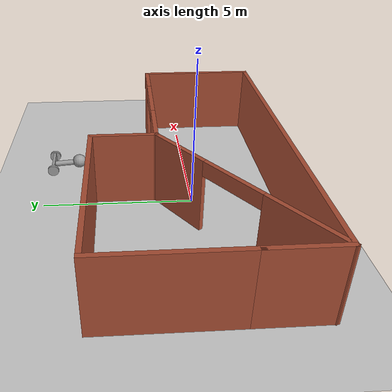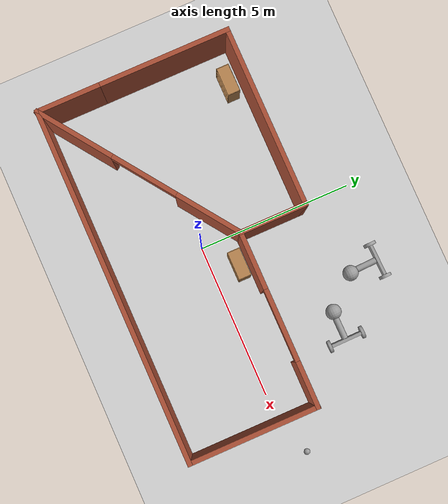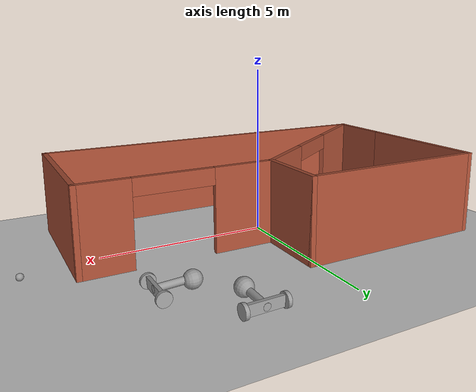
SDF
<sdf version="1.6">
 <world name="default">
  <plugin name="hello" filename="libhello.so"/>
  <light name="sun" type="directional">
   <pose>0 0 10 0 -0 0</pose>
   <diffuse>0.8 0.8 0.8 1</diffuse>
   <specular>0.2 0.2 0.2 1</specular>
   <attenuation>
    <range>1000</range>
    <constant>0.9</constant>
    <linear>0.01</linear>
    <quadratic>0.001</quadratic>
   </attenuation>
   <direction>-0.5 0.1 -0.9</direction>
  </light>
  <model name="ground_plane">
   <static>1</static>
   <link name="link">
    <collision name="collision">
     <geometry><plane><normal>0 0 1</normal><size>100 100</size></plane></geometry>
     <surface>
      <contact><collide_bitmask>65535</collide_bitmask></contact>
      <friction><ode><mu>100</mu><mu2>50</mu2></ode></friction>
     </surface>
    </collision>
    <visual name="visual">
     <cast_shadows>0</cast_shadows>
     <geometry><plane><normal>0 0 1</normal><size>100 100</size></plane></geometry>
     <material>
      <script><uri>file://media/materials/scripts/gazebo.material</uri><name>Gazebo/Grey</name></script>
     </material>
    </visual>
   </link>
  </model>
  <gravity>0 0 -9.8</gravity>
  <magnetic_field>6e-06 2.3e-05 -4.2e-05</magnetic_field>
  <atmosphere type="adiabatic"/>
  <physics name="default_physics" default="0" type="ode">
   <max_step_size>0.001</max_step_size>
   <real_time_factor>1</real_time_factor>
   <real_time_update_rate>1000</real_time_update_rate>
  </physics>
  <scene><ambient>0.4 0.4 0.4 1</ambient><background>0.7 0.7 0.7 1</background><shadows>1</shadows></scene>
  <spherical_coordinates>
   <surface_model>EARTH_WGS84</surface_model>
   <latitude_deg>0</latitude_deg>
   <longitude_deg>0</longitude_deg>
   <elevation>0</elevation>
   <heading_deg>0</heading_deg>
  </spherical_coordinates>
  <model name="house">
   <pose>0.12324 0.17964 0 0 -0 0</pose>
   <link name="Wall_0">
    <collision name="Wall_0_Collision">
     <geometry><box><size>2.25 0.15 2.5</size></box></geometry>
     <pose>0 0 1.25 0 -0 0</pose>
    </collision>
    <visual name="Wall_0_Visual">
     <pose>0 0 1.25 0 -0 0</pose>
     <geometry><box><size>2.25 0.15 2.5</size></box></geometry>
     <material>
      <script><uri>file://media/materials/scripts/gazebo.material</uri><name>Gazebo/Bricks</name></script>
      <ambient>1 1 1 1</ambient>
     </material>
     <meta><layer>0</layer></meta>
    </visual>
    <pose>-5.6602 -2.0352 0 0 0 -1.5708</pose>
   </link>
   <link name="Wall_1">
    <collision name="Wall_1_Collision">
     <geometry><box><size>11.5 0.15 2.5</size></box></geometry>
     <pose>0 0 1.25 0 -0 0</pose>
    </collision>
    <visual name="Wall_1_Visual">
     <pose>0 0 1.25 0 -0 0</pose>
     <geometry><box><size>11.5 0.15 2.5</size></box></geometry>
     <material>
      <script><uri>file://media/materials/scripts/gazebo.material</uri><name>Gazebo/Bricks</name></script>
      <ambient>1 1 1 1</ambient>
     </material>
     <meta><layer>0</layer></meta>
    </visual>
    <pose>0.014804 -3.0852 0 0 -0 0</pose>
   </link>
   <link name="Wall_10">
    <collision name="Wall_10_Collision">
     <geometry><box><size>4.25 0.15 2.5</size></box></geometry>
     <pose>0 0 1.25 0 -0 0</pose>
    </collision>
    <visual name="Wall_10_Visual">
     <pose>0 0 1.25 0 -0 0</pose>
     <geometry><box><size>4.25 0.15 2.5</size></box></geometry>
     <material>
      <script><uri>file://media/materials/scripts/gazebo.material</uri><name>Gazebo/Bricks</name></script>
      <ambient>1 1 1 1</ambient>
     </material>
     <meta><layer>0</layer></meta>
    </visual>
    <pose>-5.6602 1.0648 0 0 -0 1.5708</pose>
   </link>
   <link name="Wall_12">
    <pose>-2.7852 -1.0352 0 0 -0 0.619426</pose>
    <visual name="Wall_12_Visual_0">
     <pose>-2.26033 0 1.25 0 -0 0</pose>
     <geometry><box><size>2.69139 0.15 2.5</size></box></geometry>
     <material>
      <script><uri>file://media/materials/scripts/gazebo.material</uri><name>Gazebo/Bricks</name></script>
      <ambient>1 1 1 1</ambient>
     </material>
     <meta><layer>0</layer></meta>
    </visual>
    <collision name="Wall_12_Collision_0">
     <geometry><box><size>2.69139 0.15 2.5</size></box></geometry>
     <pose>-2.26033 0 1.25 0 -0 0</pose>
    </collision>
    <visual name="Wall_12_Visual_1">
     <pose>2.46122 0 1.25 0 -0 0</pose>
     <geometry><box><size>2.28962 0.15 2.5</size></box></geometry>
     <material>
      <script><uri>file://media/materials/scripts/gazebo.material</uri><name>Gazebo/Bricks</name></script>
      <ambient>1 1 1 1</ambient>
     </material>
     <meta><layer>0</layer></meta>
    </visual>
    <collision name="Wall_12_Collision_1">
     <geometry><box><size>2.28962 0.15 2.5</size></box></geometry>
     <pose>2.46122 0 1.25 0 -0 0</pose>
    </collision>
    <visual name="Wall_12_Visual_2">
     <pose>0.200887 0 2.25 0 -0 0</pose>
     <geometry><box><size>2.23104 0.15 0.5</size></box></geometry>
     <material>
      <script><uri>file://media/materials/scripts/gazebo.material</uri><name>Gazebo/Bricks</name></script>
      <ambient>1 1 1 1</ambient>
     </material>
     <meta><layer>0</layer></meta>
    </visual>
    <collision name="Wall_12_Collision_2">
     <geometry><box><size>2.23104 0.15 0.5</size></box></geometry>
     <pose>0.200887 0 2.25 0 -0 0</pose>
    </collision>
   </link>
   <link name="Wall_2">
    <collision name="Wall_2_Collision">
     <geometry><box><size>4.25 0.15 2.5</size></box></geometry>
     <pose>0 0 1.25 0 -0 0</pose>
    </collision>
    <visual name="Wall_2_Visual">
     <pose>0 0 1.25 0 -0 0</pose>
     <geometry><box><size>4.25 0.15 2.5</size></box></geometry>
     <material>
      <script><uri>file://media/materials/scripts/gazebo.material</uri><name>Gazebo/Bricks</name></script>
      <ambient>1 1 1 1</ambient>
     </material>
     <meta><layer>0</layer></meta>
    </visual>
    <pose>5.6898 -1.0352 0 0 -0 1.5708</pose>
   </link>
   <link name="Wall_3">
    <pose>2.8898 1.0148 0 0 -0 3.14159</pose>
    <visual name="Wall_3_Visual_0">
     <pose>-2.11303 0 1.25 0 -0 0</pose>
     <geometry><box><size>1.52393 0.15 2.5</size></box></geometry>
     <material>
      <script><uri>file://media/materials/scripts/gazebo.material</uri><name>Gazebo/Bricks</name></script>
      <ambient>1 1 1 1</ambient>
     </material>
     <meta><layer>0</layer></meta>
    </visual>
    <collision name="Wall_3_Collision_0">
     <geometry><box><size>1.52393 0.15 2.5</size></box></geometry>
     <pose>-2.11303 0 1.25 0 -0 0</pose>
    </collision>
    <visual name="Wall_3_Visual_1">
     <pose>1.91994 0 1.25 0 -0 0</pose>
     <geometry><box><size>1.91012 0.15 2.5</size></box></geometry>
     <material>
      <script><uri>file://media/materials/scripts/gazebo.material</uri><name>Gazebo/Bricks</name></script>
      <ambient>1 1 1 1</ambient>
     </material>
     <meta><layer>0</layer></meta>
    </visual>
    <collision name="Wall_3_Collision_1">
     <geometry><box><size>1.91012 0.15 2.5</size></box></geometry>
     <pose>1.91994 0 1.25 0 -0 0</pose>
    </collision>
    <visual name="Wall_3_Visual_2">
     <pose>-0.193095 0 2.25 0 -0 0</pose>
     <geometry><box><size>2.31595 0.15 0.5</size></box></geometry>
     <material>
      <script><uri>file://media/materials/scripts/gazebo.material</uri><name>Gazebo/Bricks</name></script>
      <ambient>1 1 1 1</ambient>
     </material>
     <meta><layer>0</layer></meta>
    </visual>
    <collision name="Wall_3_Collision_2">
     <geometry><box><size>2.31595 0.15 0.5</size></box></geometry>
     <pose>-0.193095 0 2.25 0 -0 0</pose>
    </collision>
   </link>
   <link name="Wall_4">
    <collision name="Wall_4_Collision">
     <geometry><box><size>2.25 0.15 2.5</size></box></geometry>
     <pose>0 0 1.25 0 -0 0</pose>
    </collision>
    <visual name="Wall_4_Visual">
     <pose>0 0 1.25 0 -0 0</pose>
     <geometry><box><size>2.25 0.15 2.5</size></box></geometry>
     <material>
      <script><uri>file://media/materials/scripts/gazebo.material</uri><name>Gazebo/Bricks</name></script>
      <ambient>1 1 1 1</ambient>
     </material>
     <meta><layer>0</layer></meta>
    </visual>
    <pose>0.089804 2.0648 0 0 -0 1.5708</pose>
   </link>
   <link name="Wall_8">
    <collision name="Wall_8_Collision">
     <geometry><box><size>5.75 0.15 2.5</size></box></geometry>
     <pose>0 0 1.25 0 -0 0</pose>
    </collision>
    <visual name="Wall_8_Visual">
     <pose>0 0 1.25 0 -0 0</pose>
     <geometry><box><size>5.75 0.15 2.5</size></box></geometry>
     <material>
      <script><uri>file://media/materials/scripts/gazebo.material</uri><name>Gazebo/Bricks</name></script>
      <ambient>1 1 1 1</ambient>
     </material>
     <meta><layer>0</layer></meta>
    </visual>
    <pose>-2.7102 3.1148 0 0 -0 3.14159</pose>
   </link>
   <static>1</static>
  </model>
  <model name="bookshelf">
   <static>1</static>
   <link name="link">
    <inertial><mass>1</mass></inertial>
    <collision name="back">
     <pose>0 0.005 0.6 0 -0 0</pose>
     <geometry><box><size>0.9 0.01 1.2</size></box></geometry>
    </collision>
    <visual name="visual1">
     <pose>0 0.005 0.6 0 -0 0</pose>
     <geometry><box><size>0.9 0.01 1.2</size></box></geometry>
     <material>
      <script><uri>file://media/materials/scripts/gazebo.material</uri><name>Gazebo/Wood</name></script>
     </material>
    </visual>
    <collision name="left_side">
     <pose>0.45 -0.195 0.6 0 -0 0</pose>
     <geometry><box><size>0.02 0.4 1.2</size></box></geometry>
    </collision>
    <visual name="visual2">
     <pose>0.45 -0.195 0.6 0 -0 0</pose>
     <geometry><box><size>0.02 0.4 1.2</size></box></geometry>
     <material>
      <script><uri>file://media/materials/scripts/gazebo.material</uri><name>Gazebo/Wood</name></script>
     </material>
    </visual>
    <collision name="right_side">
     <pose>-0.45 -0.195 0.6 0 -0 0</pose>
     <geometry><box><size>0.02 0.4 1.2</size></box></geometry>
    </collision>
    <visual name="visual3">
     <pose>-0.45 -0.195 0.6 0 -0 0</pose>
     <geometry><box><size>0.02 0.4 1.2</size></box></geometry>
     <material>
      <script><uri>file://media/materials/scripts/gazebo.material</uri><name>Gazebo/Wood</name></script>
     </material>
    </visual>
    <collision name="bottom">
     <pose>0 -0.195 0.03 0 -0 0</pose>
     <geometry><box><size>0.88 0.4 0.06</size></box></geometry>
    </collision>
    <visual name="visual4">
     <pose>0 -0.195 0.03 0 -0 0</pose>
     <geometry><box><size>0.88 0.4 0.06</size></box></geometry>
     <material>
      <script><uri>file://media/materials/scripts/gazebo.material</uri><name>Gazebo/Wood</name></script>
     </material>
    </visual>
    <collision name="top">
     <pose>0 -0.195 1.19 0 -0 0</pose>
     <geometry><box><size>0.88 0.4 0.02</size></box></geometry>
    </collision>
    <visual name="visual5">
     <pose>0 -0.195 1.19 0 -0 0</pose>
     <geometry><box><size>0.88 0.4 0.02</size></box></geometry>
     <material>
      <script><uri>file://media/materials/scripts/gazebo.material</uri><name>Gazebo/Wood</name></script>
     </material>
    </visual>
    <collision name="low_shelf">
     <pose>0 -0.195 0.43 0 -0 0</pose>
     <geometry><box><size>0.88 0.4 0.02</size></box></geometry>
    </collision>
    <visual name="visual6">
     <pose>0 -0.195 0.43 0 -0 0</pose>
     <geometry><box><size>0.88 0.4 0.02</size></box></geometry>
     <material>
      <script><uri>file://media/materials/scripts/gazebo.material</uri><name>Gazebo/Wood</name></script>
     </material>
    </visual>
    <collision name="high_shelf">
     <pose>0 -0.195 0.8 0 -0 0</pose>
     <geometry><box><size>0.88 0.4 0.02</size></box></geometry>
    </collision>
    <visual name="visual7">
     <pose>0 -0.195 0.8 0 -0 0</pose>
     <geometry><box><size>0.88 0.4 0.02</size></box></geometry>
     <material>
      <script><uri>file://media/materials/scripts/gazebo.material</uri><name>Gazebo/Wood</name></script>
     </material>
    </visual>
   </link>
   <pose>-4.39055 3.02667 0 0 -0 0</pose>
  </model>
  <model name="bookshelf_0">
   <static>1</static>
   <link name="link">
    <inertial><mass>1</mass></inertial>
    <collision name="back">
     <pose>0 0.005 0.6 0 -0 0</pose>
     <geometry><box><size>0.9 0.01 1.2</size></box></geometry>
    </collision>
    <visual name="visual1">
     <pose>0 0.005 0.6 0 -0 0</pose>
     <geometry><box><size>0.9 0.01 1.2</size></box></geometry>
     <material>
      <script><uri>file://media/materials/scripts/gazebo.material</uri><name>Gazebo/Wood</name></script>
     </material>
    </visual>
    <collision name="left_side">
     <pose>0.45 -0.195 0.6 0 -0 0</pose>
     <geometry><box><size>0.02 0.4 1.2</size></box></geometry>
    </collision>
    <visual name="visual2">
     <pose>0.45 -0.195 0.6 0 -0 0</pose>
     <geometry><box><size>0.02 0.4 1.2</size></box></geometry>
     <material>
      <script><uri>file://media/materials/scripts/gazebo.material</uri><name>Gazebo/Wood</name></script>
     </material>
    </visual>
    <collision name="right_side">
     <pose>-0.45 -0.195 0.6 0 -0 0</pose>
     <geometry><box><size>0.02 0.4 1.2</size></box></geometry>
    </collision>
    <visual name="visual3">
     <pose>-0.45 -0.195 0.6 0 -0 0</pose>
     <geometry><box><size>0.02 0.4 1.2</size></box></geometry>
     <material>
      <script><uri>file://media/materials/scripts/gazebo.material</uri><name>Gazebo/Wood</name></script>
     </material>
    </visual>
    <collision name="bottom">
     <pose>0 -0.195 0.03 0 -0 0</pose>
     <geometry><box><size>0.88 0.4 0.06</size></box></geometry>
    </collision>
    <visual name="visual4">
     <pose>0 -0.195 0.03 0 -0 0</pose>
     <geometry><box><size>0.88 0.4 0.06</size></box></geometry>
     <material>
      <script><uri>file://media/materials/scripts/gazebo.material</uri><name>Gazebo/Wood</name></script>
     </material>
    </visual>
    <collision name="top">
     <pose>0 -0.195 1.19 0 -0 0</pose>
     <geometry><box><size>0.88 0.4 0.02</size></box></geometry>
    </collision>
    <visual name="visual5">
     <pose>0 -0.195 1.19 0 -0 0</pose>
     <geometry><box><size>0.88 0.4 0.02</size></box></geometry>
     <material>
      <script><uri>file://media/materials/scripts/gazebo.material</uri><name>Gazebo/Wood</name></script>
     </material>
    </visual>
    <collision name="low_shelf">
     <pose>0 -0.195 0.43 0 -0 0</pose>
     <geometry><box><size>0.88 0.4 0.02</size></box></geometry>
    </collision>
    <visual name="visual6">
     <pose>0 -0.195 0.43 0 -0 0</pose>
     <geometry><box><size>0.88 0.4 0.02</size></box></geometry>
     <material>
      <script><uri>file://media/materials/scripts/gazebo.material</uri><name>Gazebo/Wood</name></script>
     </material>
    </visual>
    <collision name="high_shelf">
     <pose>0 -0.195 0.8 0 -0 0</pose>
     <geometry><box><size>0.88 0.4 0.02</size></box></geometry>
    </collision>
    <visual name="visual7">
     <pose>0 -0.195 0.8 0 -0 0</pose>
     <geometry><box><size>0.88 0.4 0.02</size></box></geometry>
     <material>
      <script><uri>file://media/materials/scripts/gazebo.material</uri><name>Gazebo/Wood</name></script>
     </material>
    </visual>
   </link>
   <pose>0.974263 1.03428 0 0 -0 0</pose>
  </model>
  <model name="robot">
   <link name="link_0">
    <inertial>
     <mass>1</mass>
     <inertia>
      <ixx>0.166667</ixx>
      <ixy>0</ixy>
      <ixz>0</ixz>
      <iyy>0.166667</iyy>
      <iyz>0</iyz>
      <izz>0.166667</izz>
     </inertia>
    </inertial>
    <visual name="visual">
     <geometry><box><size>0.3 1 0.1</size></box></geometry>
     <material>
      <lighting>1</lighting>
      <script><uri>file://media/materials/scripts/gazebo.material</uri><name>Gazebo/Grey</name></script>
      <shader type="pixel"><normal_map>__default__</normal_map></shader>
      <ambient>0.3 0.3 0.3 1</ambient>
      <diffuse>0.7 0.7 0.7 1</diffuse>
      <specular>0.01 0.01 0.01 1</specular>
      <emissive>0 0 0 1</emissive>
     </material>
    </visual>
    <collision name="collision">
     <geometry><box><size>0.3 1 0.1</size></box></geometry>
     <surface>
      <friction>
       <ode><mu>1</mu><mu2>1</mu2><fdir1>0 0 0</fdir1><slip1>0</slip1><slip2>0</slip2></ode>
       <torsional>
        <coefficient>1</coefficient>
        <patch_radius>0</patch_radius>
        <surface_radius>0</surface_radius>
        <use_patch_radius>1</use_patch_radius>
        <ode><slip>0</slip></ode>
       </torsional>
      </friction>
      <bounce><restitution_coefficient>0</restitution_coefficient><threshold>1e+06</threshold></bounce>
      <contact>
       <collide_without_contact>0</collide_without_contact>
       <collide_without_contact_bitmask>1</collide_without_contact_bitmask>
       <collide_bitmask>1</collide_bitmask>
       <ode>
        <soft_cfm>0</soft_cfm>
        <soft_erp>0.2</soft_erp>
        <kp>1e+13</kp>
        <kd>1</kd>
        <max_vel>0.01</max_vel>
        <min_depth>0</min_depth>
       </ode>
       <bullet>
        <split_impulse>1</split_impulse>
        <split_impulse_penetration_threshold>-0.01</split_impulse_penetration_threshold>
        <soft_cfm>0</soft_cfm>
        <soft_erp>0.2</soft_erp>
        <kp>1e+13</kp>
        <kd>1</kd>
       </bullet>
      </contact>
     </surface>
    </collision>
   </link>
   <link name="link_0_0">
    <pose>0.005679 -0.021002 0.445491 -0.033094 -0.001703 1.51939</pose>
    <inertial>
     <mass>1</mass>
     <inertia><ixx>0.145833</ixx><ixy>0</ixy><ixz>0</ixz><iyy>0.145833</iyy><iyz>0</iyz><izz>0.125</izz></inertia>
    </inertial>
    <visual name="visual">
     <geometry><cylinder><radius>0.1</radius><length>1</length></cylinder></geometry>
     <material>
      <lighting>1</lighting>
      <script><uri>file://media/materials/scripts/gazebo.material</uri><name>Gazebo/Grey</name></script>
      <shader type="pixel"><normal_map>__default__</normal_map></shader>
      <ambient>0.3 0.3 0.3 1</ambient>
      <diffuse>0.7 0.7 0.7 1</diffuse>
      <specular>0.01 0.01 0.01 1</specular>
      <emissive>0 0 0 1</emissive>
     </material>
    </visual>
    <collision name="collision">
     <geometry><cylinder><radius>0.1</radius><length>1</length></cylinder></geometry>
     <surface>
      <friction>
       <ode><mu>1</mu><mu2>1</mu2><fdir1>0 0 0</fdir1><slip1>0</slip1><slip2>0</slip2></ode>
       <torsional>
        <coefficient>1</coefficient>
        <patch_radius>0</patch_radius>
        <surface_radius>0</surface_radius>
        <use_patch_radius>1</use_patch_radius>
        <ode><slip>0</slip></ode>
       </torsional>
      </friction>
      <bounce><restitution_coefficient>0</restitution_coefficient><threshold>1e+06</threshold></bounce>
      <contact>
       <collide_without_contact>0</collide_without_contact>
       <collide_without_contact_bitmask>1</collide_without_contact_bitmask>
       <collide_bitmask>1</collide_bitmask>
       <ode>
        <soft_cfm>0</soft_cfm>
        <soft_erp>0.2</soft_erp>
        <kp>1e+13</kp>
        <kd>1</kd>
        <max_vel>0.01</max_vel>
        <min_depth>0</min_depth>
       </ode>
       <bullet>
        <split_impulse>1</split_impulse>
        <split_impulse_penetration_threshold>-0.01</split_impulse_penetration_threshold>
        <soft_cfm>0</soft_cfm>
        <soft_erp>0.2</soft_erp>
        <kp>1e+13</kp>
        <kd>1</kd>
       </bullet>
      </contact>
     </surface>
    </collision>
   </link>
   <link name="link_1">
    <pose>-0 -0.550019 -0 1.5707 -0 0</pose>
    <inertial>
     <mass>1</mass>
     <inertia><ixx>0.145833</ixx><ixy>0</ixy><ixz>0</ixz><iyy>0.145833</iyy><iyz>0</iyz><izz>0.125</izz></inertia>
    </inertial>
    <visual name="visual">
     <geometry><cylinder><radius>0.2</radius><length>0.1</length></cylinder></geometry>
     <material>
      <lighting>1</lighting>
      <script><uri>file://media/materials/scripts/gazebo.material</uri><name>Gazebo/Grey</name></script>
      <shader type="pixel"><normal_map>__default__</normal_map></shader>
      <ambient>0.3 0.3 0.3 1</ambient>
      <diffuse>0.7 0.7 0.7 1</diffuse>
      <specular>0.01 0.01 0.01 1</specular>
      <emissive>0 0 0 1</emissive>
     </material>
    </visual>
    <collision name="collision">
     <geometry><cylinder><radius>0.2</radius><length>0.1</length></cylinder></geometry>
     <surface>
      <friction>
       <ode><mu>1</mu><mu2>1</mu2><fdir1>0 0 0</fdir1><slip1>0</slip1><slip2>0</slip2></ode>
       <torsional>
        <coefficient>1</coefficient>
        <patch_radius>0</patch_radius>
        <surface_radius>0</surface_radius>
        <use_patch_radius>1</use_patch_radius>
        <ode><slip>0</slip></ode>
       </torsional>
      </friction>
      <bounce><restitution_coefficient>0</restitution_coefficient><threshold>1e+06</threshold></bounce>
      <contact>
       <collide_without_contact>0</collide_without_contact>
       <collide_without_contact_bitmask>1</collide_without_contact_bitmask>
       <collide_bitmask>1</collide_bitmask>
       <ode>
        <soft_cfm>0</soft_cfm>
        <soft_erp>0.2</soft_erp>
        <kp>1e+13</kp>
        <kd>1</kd>
        <max_vel>0.01</max_vel>
        <min_depth>0</min_depth>
       </ode>
       <bullet>
        <split_impulse>1</split_impulse>
        <split_impulse_penetration_threshold>-0.01</split_impulse_penetration_threshold>
        <soft_cfm>0</soft_cfm>
        <soft_erp>0.2</soft_erp>
        <kp>1e+13</kp>
        <kd>1</kd>
       </bullet>
      </contact>
     </surface>
    </collision>
   </link>
   <link name="link_1_clone">
    <pose>0 0.550019 0 1.5707 -0 0</pose>
    <inertial>
     <mass>1</mass>
     <inertia><ixx>0.145833</ixx><ixy>0</ixy><ixz>0</ixz><iyy>0.145833</iyy><iyz>0</iyz><izz>0.125</izz></inertia>
    </inertial>
    <visual name="visual">
     <geometry><cylinder><radius>0.2</radius><length>0.1</length></cylinder></geometry>
     <material>
      <lighting>1</lighting>
      <script><uri>file://media/materials/scripts/gazebo.material</uri><name>Gazebo/Grey</name></script>
      <shader type="pixel"><normal_map>__default__</normal_map></shader>
      <ambient>0.3 0.3 0.3 1</ambient>
      <diffuse>0.7 0.7 0.7 1</diffuse>
      <specular>0.01 0.01 0.01 1</specular>
      <emissive>0 0 0 1</emissive>
     </material>
    </visual>
    <collision name="collision">
     <geometry><cylinder><radius>0.2</radius><length>0.1</length></cylinder></geometry>
     <surface>
      <friction>
       <ode><mu>1</mu><mu2>1</mu2><fdir1>0 0 0</fdir1><slip1>0</slip1><slip2>0</slip2></ode>
       <torsional>
        <coefficient>1</coefficient>
        <patch_radius>0</patch_radius>
        <surface_radius>0</surface_radius>
        <use_patch_radius>1</use_patch_radius>
        <ode><slip>0</slip></ode>
       </torsional>
      </friction>
      <bounce><restitution_coefficient>0</restitution_coefficient><threshold>1e+06</threshold></bounce>
      <contact>
       <collide_without_contact>0</collide_without_contact>
       <collide_without_contact_bitmask>1</collide_without_contact_bitmask>
       <collide_bitmask>1</collide_bitmask>
       <ode>
        <soft_cfm>0</soft_cfm>
        <soft_erp>0.2</soft_erp>
        <kp>1e+13</kp>
        <kd>1</kd>
        <max_vel>0.01</max_vel>
        <min_depth>0</min_depth>
       </ode>
       <bullet>
        <split_impulse>1</split_impulse>
        <split_impulse_penetration_threshold>-0.01</split_impulse_penetration_threshold>
        <soft_cfm>0</soft_cfm>
        <soft_erp>0.2</soft_erp>
        <kp>1e+13</kp>
        <kd>1</kd>
       </bullet>
      </contact>
     </surface>
    </collision>
   </link>
   <link name="link_2">
    <pose>-0.029822 0 0.944589 -0.033094 -0.001703 1.51939</pose>
    <inertial>
     <mass>1</mass>
     <inertia><ixx>0.1</ixx><ixy>0</ixy><ixz>0</ixz><iyy>0.1</iyy><iyz>0</iyz><izz>0.1</izz></inertia>
    </inertial>
    <visual name="visual">
     <geometry><sphere><radius>0.25</radius></sphere></geometry>
     <material>
      <lighting>1</lighting>
      <script><uri>file://media/materials/scripts/gazebo.material</uri><name>Gazebo/Grey</name></script>
      <shader type="pixel"><normal_map>__default__</normal_map></shader>
      <ambient>0.3 0.3 0.3 1</ambient>
      <diffuse>0.7 0.7 0.7 1</diffuse>
      <specular>0.01 0.01 0.01 1</specular>
      <emissive>0 0 0 1</emissive>
     </material>
    </visual>
    <collision name="collision">
     <geometry><sphere><radius>0.25</radius></sphere></geometry>
     <surface>
      <friction>
       <ode><mu>1</mu><mu2>1</mu2><fdir1>0 0 0</fdir1><slip1>0</slip1><slip2>0</slip2></ode>
       <torsional>
        <coefficient>1</coefficient>
        <patch_radius>0</patch_radius>
        <surface_radius>0</surface_radius>
        <use_patch_radius>1</use_patch_radius>
        <ode><slip>0</slip></ode>
       </torsional>
      </friction>
      <bounce><restitution_coefficient>0</restitution_coefficient><threshold>1e+06</threshold></bounce>
      <contact>
       <collide_without_contact>0</collide_without_contact>
       <collide_without_contact_bitmask>1</collide_without_contact_bitmask>
       <collide_bitmask>1</collide_bitmask>
       <ode>
        <soft_cfm>0</soft_cfm>
        <soft_erp>0.2</soft_erp>
        <kp>1e+13</kp>
        <kd>1</kd>
        <max_vel>0.01</max_vel>
        <min_depth>0</min_depth>
       </ode>
       <bullet>
        <split_impulse>1</split_impulse>
        <split_impulse_penetration_threshold>-0.01</split_impulse_penetration_threshold>
        <soft_cfm>0</soft_cfm>
        <soft_erp>0.2</soft_erp>
        <kp>1e+13</kp>
        <kd>1</kd>
       </bullet>
      </contact>
     </surface>
    </collision>
   </link>
   <joint name="link_0_0_JOINT_2" type="fixed">
    <parent>link_0_0</parent>
    <child>link_2</child>
    <physics>
     <ode><limit><cfm>0</cfm><erp>0.2</erp></limit><suspension><cfm>0</cfm><erp>0.2</erp></suspension></ode>
    </physics>
   </joint>
   <joint name="link_0_JOINT_1" type="fixed">
    <parent>link_0</parent>
    <child>link_0_0</child>
    <physics>
     <ode><limit><cfm>0</cfm><erp>0.2</erp></limit><suspension><cfm>0</cfm><erp>0.2</erp></suspension></ode>
    </physics>
   </joint>
   <joint name="link_0_JOINT_2" type="revolute">
    <parent>link_0</parent>
    <child>link_1_clone</child>
    <axis>
     <xyz>0 0 1</xyz>
     <use_parent_model_frame>0</use_parent_model_frame>
     <limit>
      <lower>-1.79769e+308</lower>
      <upper>1.79769e+308</upper>
      <effort>-1</effort>
      <velocity>-1</velocity>
     </limit>
     <dynamics>
      <spring_reference>0</spring_reference>
      <spring_stiffness>0</spring_stiffness>
      <damping>0</damping>
      <friction>0</friction>
     </dynamics>
    </axis>
    <physics>
     <ode><limit><cfm>0</cfm><erp>0.2</erp></limit><suspension><cfm>0</cfm><erp>0.2</erp></suspension></ode>
    </physics>
   </joint>
   <joint name="link_0_JOINT_3" type="revolute">
    <parent>link_0</parent>
    <child>link_1</child>
    <axis>
     <xyz>0 0 1</xyz>
     <use_parent_model_frame>0</use_parent_model_frame>
     <limit>
      <lower>-1.79769e+308</lower>
      <upper>1.79769e+308</upper>
      <effort>-1</effort>
      <velocity>-1</velocity>
     </limit>
     <dynamics>
      <spring_reference>0</spring_reference>
      <spring_stiffness>0</spring_stiffness>
      <damping>0</damping>
      <friction>0</friction>
     </dynamics>
    </axis>
    <physics>
     <ode><limit><cfm>0</cfm><erp>0.2</erp></limit><suspension><cfm>0</cfm><erp>0.2</erp></suspension></ode>
    </physics>
   </joint>
   <static>0</static>
   <pose>2.5561 4.89691 0.199996 0.000318 1.54942 -1.53731</pose>
  </model>
  <model name="robot_0">
   <link name="link_0">
    <inertial>
     <mass>1</mass>
     <inertia>
      <ixx>0.166667</ixx>
      <ixy>0</ixy>
      <ixz>0</ixz>
      <iyy>0.166667</iyy>
      <iyz>0</iyz>
      <izz>0.166667</izz>
     </inertia>
    </inertial>
    <visual name="visual">
     <geometry><box><size>0.3 1 0.1</size></box></geometry>
     <material>
      <lighting>1</lighting>
      <script><uri>file://media/materials/scripts/gazebo.material</uri><name>Gazebo/Grey</name></script>
      <shader type="pixel"><normal_map>__default__</normal_map></shader>
      <ambient>0.3 0.3 0.3 1</ambient>
      <diffuse>0.7 0.7 0.7 1</diffuse>
      <specular>0.01 0.01 0.01 1</specular>
      <emissive>0 0 0 1</emissive>
     </material>
    </visual>
    <collision name="collision">
     <geometry><box><size>0.3 1 0.1</size></box></geometry>
     <surface>
      <friction>
       <ode><mu>1</mu><mu2>1</mu2><fdir1>0 0 0</fdir1><slip1>0</slip1><slip2>0</slip2></ode>
       <torsional>
        <coefficient>1</coefficient>
        <patch_radius>0</patch_radius>
        <surface_radius>0</surface_radius>
        <use_patch_radius>1</use_patch_radius>
        <ode><slip>0</slip></ode>
       </torsional>
      </friction>
      <bounce><restitution_coefficient>0</restitution_coefficient><threshold>1e+06</threshold></bounce>
      <contact>
       <collide_without_contact>0</collide_without_contact>
       <collide_without_contact_bitmask>1</collide_without_contact_bitmask>
       <collide_bitmask>1</collide_bitmask>
       <ode>
        <soft_cfm>0</soft_cfm>
        <soft_erp>0.2</soft_erp>
        <kp>1e+13</kp>
        <kd>1</kd>
        <max_vel>0.01</max_vel>
        <min_depth>0</min_depth>
       </ode>
       <bullet>
        <split_impulse>1</split_impulse>
        <split_impulse_penetration_threshold>-0.01</split_impulse_penetration_threshold>
        <soft_cfm>0</soft_cfm>
        <soft_erp>0.2</soft_erp>
        <kp>1e+13</kp>
        <kd>1</kd>
       </bullet>
      </contact>
     </surface>
    </collision>
   </link>
   <link name="link_0_0">
    <pose>0.005679 -0.021002 0.445491 -0.033094 -0.001703 1.51939</pose>
    <inertial>
     <mass>1</mass>
     <inertia><ixx>0.145833</ixx><ixy>0</ixy><ixz>0</ixz><iyy>0.145833</iyy><iyz>0</iyz><izz>0.125</izz></inertia>
    </inertial>
    <visual name="visual">
     <geometry><cylinder><radius>0.1</radius><length>1</length></cylinder></geometry>
     <material>
      <lighting>1</lighting>
      <script><uri>file://media/materials/scripts/gazebo.material</uri><name>Gazebo/Grey</name></script>
      <shader type="pixel"><normal_map>__default__</normal_map></shader>
      <ambient>0.3 0.3 0.3 1</ambient>
      <diffuse>0.7 0.7 0.7 1</diffuse>
      <specular>0.01 0.01 0.01 1</specular>
      <emissive>0 0 0 1</emissive>
     </material>
    </visual>
    <collision name="collision">
     <geometry><cylinder><radius>0.1</radius><length>1</length></cylinder></geometry>
     <surface>
      <friction>
       <ode><mu>1</mu><mu2>1</mu2><fdir1>0 0 0</fdir1><slip1>0</slip1><slip2>0</slip2></ode>
       <torsional>
        <coefficient>1</coefficient>
        <patch_radius>0</patch_radius>
        <surface_radius>0</surface_radius>
        <use_patch_radius>1</use_patch_radius>
        <ode><slip>0</slip></ode>
       </torsional>
      </friction>
      <bounce><restitution_coefficient>0</restitution_coefficient><threshold>1e+06</threshold></bounce>
      <contact>
       <collide_without_contact>0</collide_without_contact>
       <collide_without_contact_bitmask>1</collide_without_contact_bitmask>
       <collide_bitmask>1</collide_bitmask>
       <ode>
        <soft_cfm>0</soft_cfm>
        <soft_erp>0.2</soft_erp>
        <kp>1e+13</kp>
        <kd>1</kd>
        <max_vel>0.01</max_vel>
        <min_depth>0</min_depth>
       </ode>
       <bullet>
        <split_impulse>1</split_impulse>
        <split_impulse_penetration_threshold>-0.01</split_impulse_penetration_threshold>
        <soft_cfm>0</soft_cfm>
        <soft_erp>0.2</soft_erp>
        <kp>1e+13</kp>
        <kd>1</kd>
       </bullet>
      </contact>
     </surface>
    </collision>
   </link>
   <link name="link_1">
    <pose>-0 -0.550019 -0 1.5707 -0 0</pose>
    <inertial>
     <mass>1</mass>
     <inertia><ixx>0.145833</ixx><ixy>0</ixy><ixz>0</ixz><iyy>0.145833</iyy><iyz>0</iyz><izz>0.125</izz></inertia>
    </inertial>
    <visual name="visual">
     <geometry><cylinder><radius>0.2</radius><length>0.1</length></cylinder></geometry>
     <material>
      <lighting>1</lighting>
      <script><uri>file://media/materials/scripts/gazebo.material</uri><name>Gazebo/Grey</name></script>
      <shader type="pixel"><normal_map>__default__</normal_map></shader>
      <ambient>0.3 0.3 0.3 1</ambient>
      <diffuse>0.7 0.7 0.7 1</diffuse>
      <specular>0.01 0.01 0.01 1</specular>
      <emissive>0 0 0 1</emissive>
     </material>
    </visual>
    <collision name="collision">
     <geometry><cylinder><radius>0.2</radius><length>0.1</length></cylinder></geometry>
     <surface>
      <friction>
       <ode><mu>1</mu><mu2>1</mu2><fdir1>0 0 0</fdir1><slip1>0</slip1><slip2>0</slip2></ode>
       <torsional>
        <coefficient>1</coefficient>
        <patch_radius>0</patch_radius>
        <surface_radius>0</surface_radius>
        <use_patch_radius>1</use_patch_radius>
        <ode><slip>0</slip></ode>
       </torsional>
      </friction>
      <bounce><restitution_coefficient>0</restitution_coefficient><threshold>1e+06</threshold></bounce>
      <contact>
       <collide_without_contact>0</collide_without_contact>
       <collide_without_contact_bitmask>1</collide_without_contact_bitmask>
       <collide_bitmask>1</collide_bitmask>
       <ode>
        <soft_cfm>0</soft_cfm>
        <soft_erp>0.2</soft_erp>
        <kp>1e+13</kp>
        <kd>1</kd>
        <max_vel>0.01</max_vel>
        <min_depth>0</min_depth>
       </ode>
       <bullet>
        <split_impulse>1</split_impulse>
        <split_impulse_penetration_threshold>-0.01</split_impulse_penetration_threshold>
        <soft_cfm>0</soft_cfm>
        <soft_erp>0.2</soft_erp>
        <kp>1e+13</kp>
        <kd>1</kd>
       </bullet>
      </contact>
     </surface>
    </collision>
   </link>
   <link name="link_1_clone">
    <pose>0 0.550019 0 1.5707 -0 0</pose>
    <inertial>
     <mass>1</mass>
     <inertia><ixx>0.145833</ixx><ixy>0</ixy><ixz>0</ixz><iyy>0.145833</iyy><iyz>0</iyz><izz>0.125</izz></inertia>
    </inertial>
    <visual name="visual">
     <geometry><cylinder><radius>0.2</radius><length>0.1</length></cylinder></geometry>
     <material>
      <lighting>1</lighting>
      <script><uri>file://media/materials/scripts/gazebo.material</uri><name>Gazebo/Grey</name></script>
      <shader type="pixel"><normal_map>__default__</normal_map></shader>
      <ambient>0.3 0.3 0.3 1</ambient>
      <diffuse>0.7 0.7 0.7 1</diffuse>
      <specular>0.01 0.01 0.01 1</specular>
      <emissive>0 0 0 1</emissive>
     </material>
    </visual>
    <collision name="collision">
     <geometry><cylinder><radius>0.2</radius><length>0.1</length></cylinder></geometry>
     <surface>
      <friction>
       <ode><mu>1</mu><mu2>1</mu2><fdir1>0 0 0</fdir1><slip1>0</slip1><slip2>0</slip2></ode>
       <torsional>
        <coefficient>1</coefficient>
        <patch_radius>0</patch_radius>
        <surface_radius>0</surface_radius>
        <use_patch_radius>1</use_patch_radius>
        <ode><slip>0</slip></ode>
       </torsional>
      </friction>
      <bounce><restitution_coefficient>0</restitution_coefficient><threshold>1e+06</threshold></bounce>
      <contact>
       <collide_without_contact>0</collide_without_contact>
       <collide_without_contact_bitmask>1</collide_without_contact_bitmask>
       <collide_bitmask>1</collide_bitmask>
       <ode>
        <soft_cfm>0</soft_cfm>
        <soft_erp>0.2</soft_erp>
        <kp>1e+13</kp>
        <kd>1</kd>
        <max_vel>0.01</max_vel>
        <min_depth>0</min_depth>
       </ode>
       <bullet>
        <split_impulse>1</split_impulse>
        <split_impulse_penetration_threshold>-0.01</split_impulse_penetration_threshold>
        <soft_cfm>0</soft_cfm>
        <soft_erp>0.2</soft_erp>
        <kp>1e+13</kp>
        <kd>1</kd>
       </bullet>
      </contact>
     </surface>
    </collision>
   </link>
   <link name="link_2">
    <pose>-0.029822 0 0.944589 -0.033094 -0.001703 1.51939</pose>
    <inertial>
     <mass>1</mass>
     <inertia><ixx>0.1</ixx><ixy>0</ixy><ixz>0</ixz><iyy>0.1</iyy><iyz>0</iyz><izz>0.1</izz></inertia>
    </inertial>
    <visual name="visual">
     <geometry><sphere><radius>0.25</radius></sphere></geometry>
     <material>
      <lighting>1</lighting>
      <script><uri>file://media/materials/scripts/gazebo.material</uri><name>Gazebo/Grey</name></script>
      <shader type="pixel"><normal_map>__default__</normal_map></shader>
      <ambient>0.3 0.3 0.3 1</ambient>
      <diffuse>0.7 0.7 0.7 1</diffuse>
      <specular>0.01 0.01 0.01 1</specular>
      <emissive>0 0 0 1</emissive>
     </material>
    </visual>
    <collision name="collision">
     <geometry><sphere><radius>0.25</radius></sphere></geometry>
     <surface>
      <friction>
       <ode><mu>1</mu><mu2>1</mu2><fdir1>0 0 0</fdir1><slip1>0</slip1><slip2>0</slip2></ode>
       <torsional>
        <coefficient>1</coefficient>
        <patch_radius>0</patch_radius>
        <surface_radius>0</surface_radius>
        <use_patch_radius>1</use_patch_radius>
        <ode><slip>0</slip></ode>
       </torsional>
      </friction>
      <bounce><restitution_coefficient>0</restitution_coefficient><threshold>1e+06</threshold></bounce>
      <contact>
       <collide_without_contact>0</collide_without_contact>
       <collide_without_contact_bitmask>1</collide_without_contact_bitmask>
       <collide_bitmask>1</collide_bitmask>
       <ode>
        <soft_cfm>0</soft_cfm>
        <soft_erp>0.2</soft_erp>
        <kp>1e+13</kp>
        <kd>1</kd>
        <max_vel>0.01</max_vel>
        <min_depth>0</min_depth>
       </ode>
       <bullet>
        <split_impulse>1</split_impulse>
        <split_impulse_penetration_threshold>-0.01</split_impulse_penetration_threshold>
        <soft_cfm>0</soft_cfm>
        <soft_erp>0.2</soft_erp>
        <kp>1e+13</kp>
        <kd>1</kd>
       </bullet>
      </contact>
     </surface>
    </collision>
   </link>
   <joint name="link_0_0_JOINT_2" type="fixed">
    <parent>link_0_0</parent>
    <child>link_2</child>
    <physics>
     <ode><limit><cfm>0</cfm><erp>0.2</erp></limit><suspension><cfm>0</cfm><erp>0.2</erp></suspension></ode>
    </physics>
   </joint>
   <joint name="link_0_JOINT_1" type="fixed">
    <parent>link_0</parent>
    <child>link_0_0</child>
    <physics>
     <ode><limit><cfm>0</cfm><erp>0.2</erp></limit><suspension><cfm>0</cfm><erp>0.2</erp></suspension></ode>
    </physics>
   </joint>
   <joint name="link_0_JOINT_2" type="revolute">
    <parent>link_0</parent>
    <child>link_1_clone</child>
    <axis>
     <xyz>0 0 1</xyz>
     <use_parent_model_frame>0</use_parent_model_frame>
     <limit>
      <lower>-1.79769e+308</lower>
      <upper>1.79769e+308</upper>
      <effort>-1</effort>
      <velocity>-1</velocity>
     </limit>
     <dynamics>
      <spring_reference>0</spring_reference>
      <spring_stiffness>0</spring_stiffness>
      <damping>0</damping>
      <friction>0</friction>
     </dynamics>
    </axis>
    <physics>
     <ode><limit><cfm>0</cfm><erp>0.2</erp></limit><suspension><cfm>0</cfm><erp>0.2</erp></suspension></ode>
    </physics>
   </joint>
   <joint name="link_0_JOINT_3" type="revolute">
    <parent>link_0</parent>
    <child>link_1</child>
    <axis>
     <xyz>0 0 1</xyz>
     <use_parent_model_frame>0</use_parent_model_frame>
     <limit>
      <lower>-1.79769e+308</lower>
      <upper>1.79769e+308</upper>
      <effort>-1</effort>
      <velocity>-1</velocity>
     </limit>
     <dynamics>
      <spring_reference>0</spring_reference>
      <spring_stiffness>0</spring_stiffness>
      <damping>0</damping>
      <friction>0</friction>
     </dynamics>
    </axis>
    <physics>
     <ode><limit><cfm>0</cfm><erp>0.2</erp></limit><suspension><cfm>0</cfm><erp>0.2</erp></suspension></ode>
    </physics>
   </joint>
   <static>0</static>
   <pose>4.4214 2.9795 0.199999 -3.3e-05 -1.4863 0.011857</pose>
  </model>
  <model name="my_ball">
   <link name="link">
    <inertial>
     <mass>1</mass>
     <inertia><ixx>0.1</ixx><ixy>0</ixy><ixz>0</ixz><iyy>0.1</iyy><iyz>0</iyz><izz>0.1</izz></inertia>
    </inertial>
    <visual name="visual">
     <geometry><sphere><radius>0.1</radius></sphere></geometry>
     <material>
      <script><name>Gazebo/Grey</name><uri>file://media/materials/scripts/gazebo.material</uri></script>
      <shader type="pixel"><normal_map>__default__</normal_map></shader>
      <ambient>1 1 1 1</ambient>
      <diffuse>1 1 1 1</diffuse>
      <specular>1 1 1 1</specular>
      <emissive>1 1 1 1</emissive>
     </material>
    </visual>
    <collision name="collision">
     <geometry><sphere><radius>0.1</radius></sphere></geometry>
     <surface>
      <friction>
       <ode><mu>1</mu><mu2>1</mu2><fdir1>0 0 0</fdir1><slip1>0</slip1><slip2>0</slip2></ode>
       <torsional>
        <coefficient>1</coefficient>
        <patch_radius>0</patch_radius>
        <surface_radius>0</surface_radius>
        <use_patch_radius>1</use_patch_radius>
        <ode><slip>0</slip></ode>
       </torsional>
      </friction>
      <bounce><restitution_coefficient>0</restitution_coefficient><threshold>1e+06</threshold></bounce>
      <contact>
       <collide_without_contact>0</collide_without_contact>
       <collide_without_contact_bitmask>1</collide_without_contact_bitmask>
       <collide_bitmask>1</collide_bitmask>
       <ode>
        <soft_cfm>0</soft_cfm>
        <soft_erp>0.2</soft_erp>
        <kp>1e+13</kp>
        <kd>1</kd>
        <max_vel>0.01</max_vel>
        <min_depth>0</min_depth>
       </ode>
       <bullet>
        <split_impulse>1</split_impulse>
        <split_impulse_penetration_threshold>-0.01</split_impulse_penetration_threshold>
        <soft_cfm>0</soft_cfm>
        <soft_erp>0.2</soft_erp>
        <kp>1e+13</kp>
        <kd>1</kd>
       </bullet>
      </contact>
     </surface>
    </collision>
   </link>
   <static>0</static>
   <pose>7.10342 0.455536 0.1 0 -0 0</pose>
  </model>
 </world>
</sdf>
